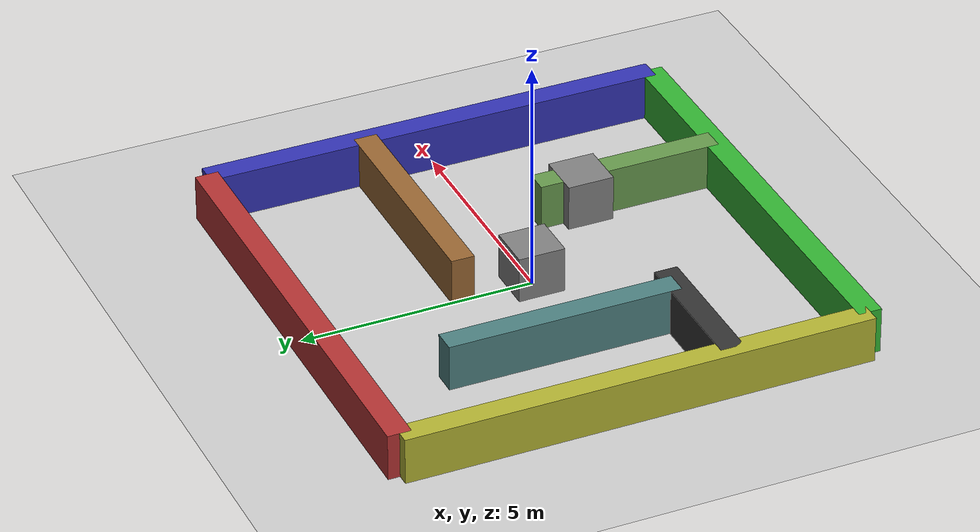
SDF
<?xml version="1.0" ?>
<sdf version="1.8">
  <world name="maze">
    <scene>
      <grid>false</grid>
    </scene>

    <physics name="10ms" type="ignored">
      <max_step_size>0.01</max_step_size>
      <real_time_factor>1.0</real_time_factor>
      <dart>
        <collision_detector>bullet</collision_detector>
      </dart>
    </physics>

    <plugin filename="ignition-gazebo-physics-system"
            name="ignition::gazebo::systems::Physics">
    </plugin>

    <plugin filename="ignition-gazebo-sensors-system"
            name="ignition::gazebo::systems::Sensors">
      <render_engine>ogre2</render_engine>
    </plugin>

    <plugin filename="ignition-gazebo-scene-broadcaster-system"
            name="ignition::gazebo::systems::SceneBroadcaster">
    </plugin>

    <plugin filename="ignition-gazebo-user-commands-system"
            name="ignition::gazebo::systems::UserCommands">
    </plugin>

    <!-- imu plugin -->
    <plugin filename="libignition-gazebo-imu-system.so"
            name="ignition::gazebo::systems::Imu">
    </plugin>

    <!-- Map Creator plugin (standalone package) -->

    <light name="sun" type="directional">
      <cast_shadows>true</cast_shadows>
      <pose>0 0 10 0 0 0</pose>
      <diffuse>0.8 0.8 0.8 1</diffuse>
      <specular>0.2 0.2 0.2 1</specular>
      <attenuation>
        <range>1000</range>
        <constant>0.9</constant>
        <linear>0.01</linear>
        <quadratic>0.001</quadratic>
      </attenuation>
      <direction>-0.5 0.1 -0.9</direction>
    </light>

    <model name="ground_plane">
      <static>true</static>
      <link name="link">
        <collision name="collision">
          <geometry>
            <plane>
              <normal>0 0 1</normal>
              <size>100 100</size>
            </plane>
          </geometry>
        </collision>
        <visual name="visual">
          <geometry>
            <plane>
              <normal>0 0 1</normal>
              <size>100 100</size>
            </plane>
          </geometry>
          <material>
            <ambient>0.8 0.8 0.8 1</ambient>
            <diffuse>0.8 0.8 0.8 1</diffuse>
            <specular>0.8 0.8 0.8 1</specular>
          </material>
        </visual>
      </link>
      <pose>0 0 0 0 0 0</pose>
    </model>

    <!-- Maze Model (outer walls) -->
    <model name="maze">
      <static>true</static>

      <!-- Outer walls label -->
      <plugin filename="ignition-gazebo-label-system"
              name="ignition::gazebo::systems::Label">
        <label>100</label>
      </plugin>

      <link name="wall_1">
        <collision name="collision">
          <geometry>
            <box>
              <size>10 0.5 1</size>
            </box>
          </geometry>
        </collision>
        <visual name="visual">
          <geometry>
            <box>
              <size>10 0.5 1</size>
            </box>
          </geometry>
          <material>
            <ambient>0.7 0.2 0.2 1</ambient>
            <diffuse>0.7 0.2 0.2 1</diffuse>
          </material>
        </visual>
        <pose>0 5 0.5 0 0 0</pose>
      </link>

      <link name="wall_2">
        <collision name="collision">
          <geometry>
            <box>
              <size>0.5 10 1</size>
            </box>
          </geometry>
        </collision>
        <visual name="visual">
          <geometry>
            <box>
              <size>0.5 10 1</size>
            </box>
          </geometry>
          <material>
            <ambient>0.2 0.2 0.7 1</ambient>
            <diffuse>0.2 0.2 0.7 1</diffuse>
          </material>
        </visual>
        <pose>5 0 0.5 0 0 0</pose>
      </link>

      <link name="wall_3">
        <collision name="collision">
          <geometry>
            <box>
              <size>10 0.5 1</size>
            </box>
          </geometry>
        </collision>
        <visual name="visual">
          <geometry>
            <box>
              <size>10 0.5 1</size>
            </box>
          </geometry>
          <material>
            <ambient>0.2 0.7 0.2 1</ambient>
            <diffuse>0.2 0.7 0.2 1</diffuse>
          </material>
        </visual>
        <pose>0 -5 0.5 0 0 0</pose>
      </link>

      <link name="wall_4">
        <collision name="collision">
          <geometry>
            <box>
              <size>0.5 10 1</size>
            </box>
          </geometry>
        </collision>
        <visual name="visual">
          <geometry>
            <box>
              <size>0.5 10 1</size>
            </box>
          </geometry>
          <material>
            <ambient>0.7 0.7 0.2 1</ambient>
            <diffuse>0.7 0.7 0.2 1</diffuse>
          </material>
        </visual>
        <pose>-5 0 0.5 0 0 0</pose>
      </link>
    </model>

    <!-- Inner walls - separate models for different labels -->
    <model name="maze_inner_wall_1">
      <static>true</static>
      <plugin filename="ignition-gazebo-label-system"
              name="ignition::gazebo::systems::Label">
        <label>200</label>
      </plugin>
      <link name="link">
        <collision name="collision">
          <geometry>
            <box>
              <size>0.5 5 1</size>
            </box>
          </geometry>
        </collision>
        <visual name="visual">
          <geometry>
            <box>
              <size>0.5 5 1</size>
            </box>
          </geometry>
          <material>
            <ambient>0.3 0.5 0.5 1</ambient>
            <diffuse>0.3 0.5 0.5 1</diffuse>
          </material>
        </visual>
        <pose>-2.5 0.5 0.5 0 0 0</pose>
      </link>
    </model>

    <model name="maze_inner_wall_2">
      <static>true</static>
      <plugin filename="ignition-gazebo-label-system"
              name="ignition::gazebo::systems::Label">
        <label>200</label>
      </plugin>
      <link name="link">
        <collision name="collision">
          <geometry>
            <box>
              <size>5 0.5 1</size>
            </box>
          </geometry>
        </collision>
        <visual name="visual">
          <geometry>
            <box>
              <size>5 0.5 1</size>
            </box>
          </geometry>
          <material>
            <ambient>0.6 0.4 0.2 1</ambient>
            <diffuse>0.6 0.4 0.2 1</diffuse>
          </material>
        </visual>
        <pose>2.5 1.5 0.5 0 0 0</pose>
      </link>
    </model>

    <model name="maze_inner_wall_3">
      <static>true</static>
      <plugin filename="ignition-gazebo-label-system"
              name="ignition::gazebo::systems::Label">
        <label>200</label>
      </plugin>
      <link name="link">
        <collision name="collision">
          <geometry>
            <box>
              <size>0.5 4 1</size>
            </box>
          </geometry>
        </collision>
        <visual name="visual">
          <geometry>
            <box>
              <size>0.5 4 1</size>
            </box>
          </geometry>
          <material>
            <ambient>0.4 0.6 0.3 1</ambient>
            <diffuse>0.4 0.6 0.3 1</diffuse>
          </material>
        </visual>
        <pose>2 -3 0.5 0 0 0</pose>
      </link>
    </model>

    <model name="maze_inner_wall_4">
      <static>true</static>
      <plugin filename="ignition-gazebo-label-system"
              name="ignition::gazebo::systems::Label">
        <label>200</label>
      </plugin>
      <link name="link">
        <collision name="collision">
          <geometry>
            <box>
              <size>3 0.5 1</size>
            </box>
          </geometry>
        </collision>
        <visual name="visual">
          <geometry>
            <box>
              <size>3 0.5 1</size>
            </box>
          </geometry>
          <material>
            <ambient>0.2 0.2 0.2 1</ambient>
            <diffuse>0.2 0.2 0.2 1</diffuse>
          </material>
        </visual>
        <pose>-3.5 -2 0.5 0 0 0</pose>
      </link>
    </model>

    <!-- Custom obstacle 1 -->
    <model name="obstacle_box_1">
      <static>true</static>
      <pose>0 0 0.5 0 0 0</pose>
      <link name="link">
        <collision name="collision">
          <geometry>
            <box>
              <size>1.0 1.0 1.0</size>
            </box>
          </geometry>
        </collision>
        <visual name="visual">
          <geometry>
            <box>
              <size>1.0 1.0 1.0</size>
            </box>
          </geometry>
          <material>
            <ambient>0.5 0.5 0.5 1</ambient>
            <diffuse>0.5 0.5 0.5 1</diffuse>
            <specular>0.1 0.1 0.1 1</specular>
          </material>
        </visual>
      </link>
    </model>

    <!-- Custom obstacle 2 -->
    <model name="obstacle_box_2">
      <static>true</static>
      <pose>2 -2 0.5 0 0 0</pose>
      <link name="link">
        <collision name="collision">
          <geometry>
            <box>
              <size>1.0 1.0 1.0</size>
            </box>
          </geometry>
        </collision>
        <visual name="visual">
          <geometry>
            <box>
              <size>1.0 1.0 1.0</size>
            </box>
          </geometry>
          <material>
            <ambient>0.5 0.5 0.5 1</ambient>
            <diffuse>0.5 0.5 0.5 1</diffuse>
            <specular>0.1 0.1 0.1 1</specular>
          </material>
        </visual>
      </link>
    </model>

  </world>
</sdf>
